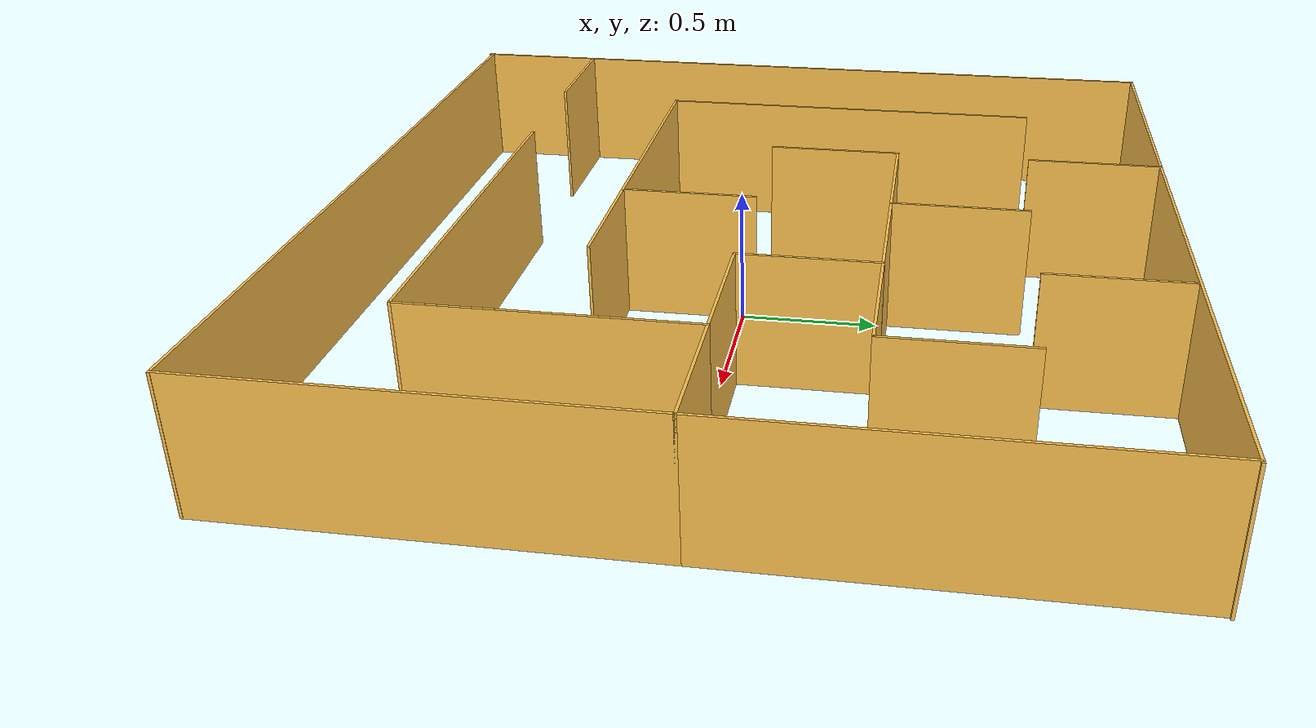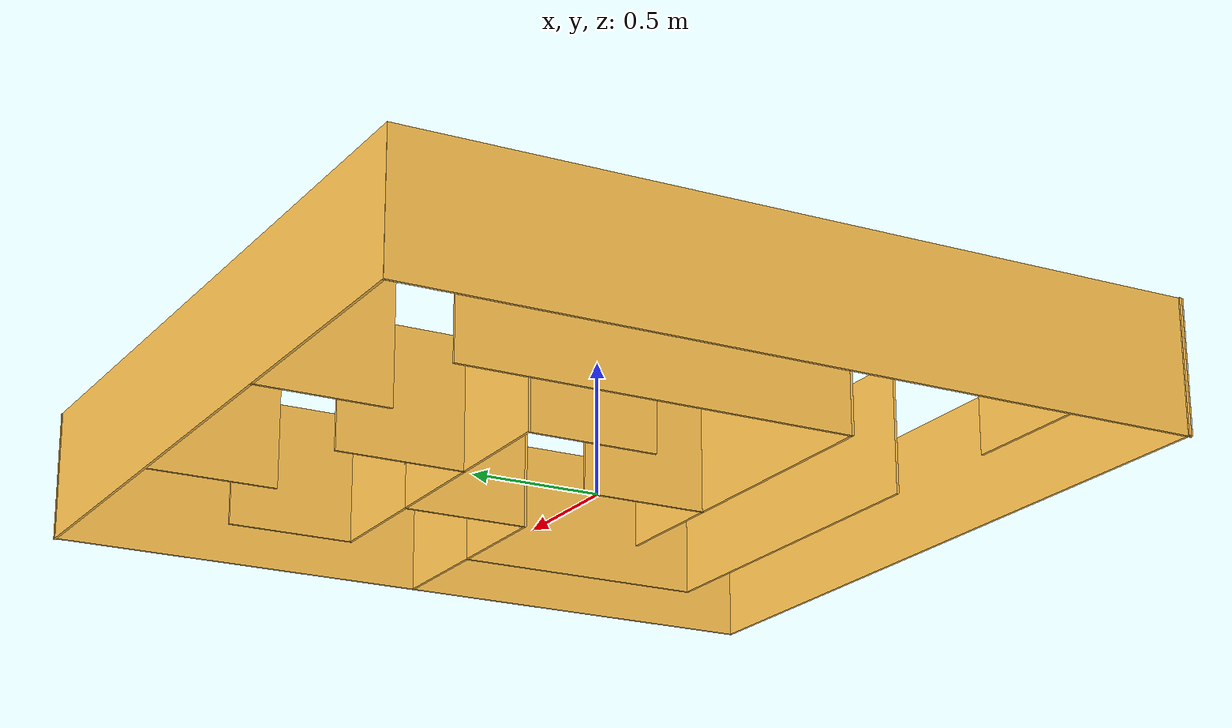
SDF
<?xml version='1.0'?>
<sdf version='1.7'>
  <model name='maze_world'>
    <pose>-0.030549 0.041679 0 0 -0 0</pose>
    <link name='Wall_0'>
      <collision name='Wall_0_Collision'>
        <geometry>
          <box>
            <size>0.5 0.01 0.5</size>
          </box>
        </geometry>
        <pose>0 0 0.25 0 -0 0</pose>
      </collision>
      <visual name='Wall_0_Visual'>
        <pose>0 0 0.25 0 -0 0</pose>
        <geometry>
          <box>
            <size>0.5 0.01 0.5</size>
          </box>
        </geometry>
        <material>
          <script>
            <uri>file://media/materials/scripts/gazebo.material</uri>
            <name>Gazebo/Grey</name>
          </script>
          <ambient>1 0.764706 0.305882 1</ambient>
        </material>
        <meta>
          <layer>0</layer>
        </meta>
      </visual>
      <pose>1.24555 0.005321 0 0 -0 3.14159</pose>
    </link>
    <link name='Wall_10'>
      <collision name='Wall_10_Collision'>
        <geometry>
          <box>
            <size>0.5 0.01 0.5</size>
          </box>
        </geometry>
        <pose>0 0 0.25 0 -0 0</pose>
      </collision>
      <visual name='Wall_10_Visual'>
        <pose>0 0 0.25 0 -0 0</pose>
        <geometry>
          <box>
            <size>0.5 0.01 0.5</size>
          </box>
        </geometry>
        <material>
          <script>
            <uri>file://media/materials/scripts/gazebo.material</uri>
            <name>Gazebo/Grey</name>
          </script>
          <ambient>1 0.764706 0.305882 1</ambient>
        </material>
        <meta>
          <layer>0</layer>
        </meta>
      </visual>
      <pose>0.755549 0.005321 0 0 -0 3.14159</pose>
    </link>
    <link name='Wall_12'>
      <collision name='Wall_12_Collision'>
        <geometry>
          <box>
            <size>0.5 0.01 0.5</size>
          </box>
        </geometry>
        <pose>0 0 0.25 0 -0 0</pose>
      </collision>
      <visual name='Wall_12_Visual'>
        <pose>0 0 0.25 0 -0 0</pose>
        <geometry>
          <box>
            <size>0.5 0.01 0.5</size>
          </box>
        </geometry>
        <material>
          <script>
            <uri>file://media/materials/scripts/gazebo.material</uri>
            <name>Gazebo/Grey</name>
          </script>
          <ambient>1 0.764706 0.305882 1</ambient>
        </material>
        <meta>
          <layer>0</layer>
        </meta>
      </visual>
      <pose>0.510549 0.250321 0 0 -0 1.5708</pose>
    </link>
    <link name='Wall_14'>
      <collision name='Wall_14_Collision'>
        <geometry>
          <box>
            <size>0.5 0.01 0.5</size>
          </box>
        </geometry>
        <pose>0 0 0.25 0 -0 0</pose>
      </collision>
      <visual name='Wall_14_Visual'>
        <pose>0 0 0.25 0 -0 0</pose>
        <geometry>
          <box>
            <size>0.5 0.01 0.5</size>
          </box>
        </geometry>
        <material>
          <script>
            <uri>file://media/materials/scripts/gazebo.material</uri>
            <name>Gazebo/Grey</name>
          </script>
          <ambient>1 0.764706 0.305882 1</ambient>
        </material>
        <meta>
          <layer>0</layer>
        </meta>
      </visual>
      <pose>0.755549 0.495321 0 0 -0 0</pose>
    </link>
    <link name='Wall_16'>
      <collision name='Wall_16_Collision'>
        <geometry>
          <box>
            <size>0.5 0.01 0.5</size>
          </box>
        </geometry>
        <pose>0 0 0.25 0 -0 0</pose>
      </collision>
      <visual name='Wall_16_Visual'>
        <pose>0 0 0.25 0 -0 0</pose>
        <geometry>
          <box>
            <size>0.5 0.01 0.5</size>
          </box>
        </geometry>
        <material>
          <script>
            <uri>file://media/materials/scripts/gazebo.material</uri>
            <name>Gazebo/Grey</name>
          </script>
          <ambient>1 0.764706 0.305882 1</ambient>
        </material>
        <meta>
          <layer>0</layer>
        </meta>
      </visual>
      <pose>0.265549 0.495321 0 0 -0 3.14159</pose>
    </link>
    <link name='Wall_18'>
      <collision name='Wall_18_Collision'>
        <geometry>
          <box>
            <size>0.5 0.01 0.5</size>
          </box>
        </geometry>
        <pose>0 0 0.25 0 -0 0</pose>
      </collision>
      <visual name='Wall_18_Visual'>
        <pose>0 0 0.25 0 -0 0</pose>
        <geometry>
          <box>
            <size>0.5 0.01 0.5</size>
          </box>
        </geometry>
        <material>
          <script>
            <uri>file://media/materials/scripts/gazebo.material</uri>
            <name>Gazebo/Grey</name>
          </script>
          <ambient>1 0.764706 0.305882 1</ambient>
        </material>
        <meta>
          <layer>0</layer>
        </meta>
      </visual>
      <pose>-0.224451 0.495321 0 0 -0 3.14159</pose>
    </link>
    <link name='Wall_2'>
      <collision name='Wall_2_Collision'>
        <geometry>
          <box>
            <size>1 0.01 0.5</size>
          </box>
        </geometry>
        <pose>0 0 0.25 0 -0 0</pose>
      </collision>
      <visual name='Wall_2_Visual'>
        <pose>0 0 0.25 0 -0 0</pose>
        <geometry>
          <box>
            <size>1 0.01 0.5</size>
          </box>
        </geometry>
        <material>
          <script>
            <uri>file://media/materials/scripts/gazebo.material</uri>
            <name>Gazebo/Grey</name>
          </script>
          <ambient>1 0.764706 0.305882 1</ambient>
        </material>
        <meta>
          <layer>0</layer>
        </meta>
      </visual>
      <pose>1.00055 -0.489679 0 0 -0 -1.5708</pose>
    </link>
    <link name='Wall_20'>
      <collision name='Wall_20_Collision'>
        <geometry>
          <box>
            <size>0.5 0.01 0.5</size>
          </box>
        </geometry>
        <pose>0 0 0.25 0 -0 0</pose>
      </collision>
      <visual name='Wall_20_Visual'>
        <pose>0 0 0.25 0 -0 0</pose>
        <geometry>
          <box>
            <size>0.5 0.01 0.5</size>
          </box>
        </geometry>
        <material>
          <script>
            <uri>file://media/materials/scripts/gazebo.material</uri>
            <name>Gazebo/Grey</name>
          </script>
          <ambient>1 0.764706 0.305882 1</ambient>
        </material>
        <meta>
          <layer>0</layer>
        </meta>
      </visual>
      <pose>-0.469451 0.250321 0 0 -0 -1.5708</pose>
    </link>
    <link name='Wall_22'>
      <collision name='Wall_22_Collision'>
        <geometry>
          <box>
            <size>0.5 0.01 0.5</size>
          </box>
        </geometry>
        <pose>0 0 0.25 0 -0 0</pose>
      </collision>
      <visual name='Wall_22_Visual'>
        <pose>0 0 0.25 0 -0 0</pose>
        <geometry>
          <box>
            <size>0.5 0.01 0.5</size>
          </box>
        </geometry>
        <material>
          <script>
            <uri>file://media/materials/scripts/gazebo.material</uri>
            <name>Gazebo/Grey</name>
          </script>
          <ambient>1 0.764706 0.305882 1</ambient>
        </material>
        <meta>
          <layer>0</layer>
        </meta>
      </visual>
      <pose>0.020549 0.740321 0 0 -0 1.5708</pose>
    </link>
    <link name='Wall_24'>
      <collision name='Wall_24_Collision'>
        <geometry>
          <box>
            <size>0.5 0.01 0.5</size>
          </box>
        </geometry>
        <pose>0 0 0.25 0 -0 0</pose>
      </collision>
      <visual name='Wall_24_Visual'>
        <pose>0 0 0.25 0 -0 0</pose>
        <geometry>
          <box>
            <size>0.5 0.01 0.5</size>
          </box>
        </geometry>
        <material>
          <script>
            <uri>file://media/materials/scripts/gazebo.material</uri>
            <name>Gazebo/Grey</name>
          </script>
          <ambient>1 0.764706 0.305882 1</ambient>
        </material>
        <meta>
          <layer>0</layer>
        </meta>
      </visual>
      <pose>1.00055 0.740321 0 0 -0 1.5708</pose>
    </link>
    <link name='Wall_26'>
      <collision name='Wall_26_Collision'>
        <geometry>
          <box>
            <size>0.5 0.01 0.5</size>
          </box>
        </geometry>
        <pose>0 0 0.25 0 -0 0</pose>
      </collision>
      <visual name='Wall_26_Visual'>
        <pose>0 0 0.25 0 -0 0</pose>
        <geometry>
          <box>
            <size>0.5 0.01 0.5</size>
          </box>
        </geometry>
        <material>
          <script>
            <uri>file://media/materials/scripts/gazebo.material</uri>
            <name>Gazebo/Grey</name>
          </script>
          <ambient>1 0.764706 0.305882 1</ambient>
        </material>
        <meta>
          <layer>0</layer>
        </meta>
      </visual>
      <pose>0.515549 1.24865 0 0 -0 -1.5708</pose>
    </link>
    <link name='Wall_28'>
      <collision name='Wall_28_Collision'>
        <geometry>
          <box>
            <size>0.5 0.01 0.5</size>
          </box>
        </geometry>
        <pose>0 0 0.25 0 -0 0</pose>
      </collision>
      <visual name='Wall_28_Visual'>
        <pose>0 0 0.25 0 -0 0</pose>
        <geometry>
          <box>
            <size>0.5 0.01 0.5</size>
          </box>
        </geometry>
        <material>
          <script>
            <uri>file://media/materials/scripts/gazebo.material</uri>
            <name>Gazebo/Grey</name>
          </script>
          <ambient>1 0.764706 0.305882 1</ambient>
        </material>
        <meta>
          <layer>0</layer>
        </meta>
      </visual>
      <pose>-0.471451 1.2488 0 0 -0 -1.5708</pose>
    </link>
    <link name='Wall_36'>
      <collision name='Wall_36_Collision'>
        <geometry>
          <box>
            <size>1.5 0.01 0.5</size>
          </box>
        </geometry>
        <pose>0 0 0.25 0 -0 0</pose>
      </collision>
      <visual name='Wall_36_Visual'>
        <pose>0 0 0.25 0 -0 0</pose>
        <geometry>
          <box>
            <size>1.5 0.01 0.5</size>
          </box>
        </geometry>
        <material>
          <script>
            <uri>file://media/materials/scripts/gazebo.material</uri>
            <name>Gazebo/Grey</name>
          </script>
          <ambient>1 0.764706 0.305882 1</ambient>
        </material>
        <meta>
          <layer>0</layer>
        </meta>
      </visual>
      <pose>-0.955451 0.261321 0 0 -0 1.5708</pose>
    </link>
    <link name='Wall_38'>
      <collision name='Wall_38_Collision'>
        <geometry>
          <box>
            <size>1 0.01 0.5</size>
          </box>
        </geometry>
        <pose>0 0 0.25 0 -0 0</pose>
      </collision>
      <visual name='Wall_38_Visual'>
        <pose>0 0 0.25 0 -0 0</pose>
        <geometry>
          <box>
            <size>1 0.01 0.5</size>
          </box>
        </geometry>
        <material>
          <script>
            <uri>file://media/materials/scripts/gazebo.material</uri>
            <name>Gazebo/Grey</name>
          </script>
          <ambient>1 0.764706 0.305882 1</ambient>
        </material>
        <meta>
          <layer>0</layer>
        </meta>
      </visual>
      <pose>-0.460451 -0.483679 0 0 -0 0</pose>
    </link>
    <link name='Wall_40'>
      <collision name='Wall_40_Collision'>
        <geometry>
          <box>
            <size>0.5 0.01 0.5</size>
          </box>
        </geometry>
        <pose>0 0 0.25 0 -0 0</pose>
      </collision>
      <visual name='Wall_40_Visual'>
        <pose>0 0 0.25 0 -0 0</pose>
        <geometry>
          <box>
            <size>0.5 0.01 0.5</size>
          </box>
        </geometry>
        <material>
          <script>
            <uri>file://media/materials/scripts/gazebo.material</uri>
            <name>Gazebo/Grey</name>
          </script>
          <ambient>1 0.764706 0.305882 1</ambient>
        </material>
        <meta>
          <layer>0</layer>
        </meta>
      </visual>
      <pose>0.279549 -0.483679 0 0 -0 0</pose>
    </link>
    <link name='Wall_42'>
      <collision name='Wall_42_Collision'>
        <geometry>
          <box>
            <size>0.5 0.01 0.5</size>
          </box>
        </geometry>
        <pose>0 0 0.25 0 -0 0</pose>
      </collision>
      <visual name='Wall_42_Visual'>
        <pose>0 0 0.25 0 -0 0</pose>
        <geometry>
          <box>
            <size>0.5 0.01 0.5</size>
          </box>
        </geometry>
        <material>
          <script>
            <uri>file://media/materials/scripts/gazebo.material</uri>
            <name>Gazebo/Grey</name>
          </script>
          <ambient>1 0.764706 0.305882 1</ambient>
        </material>
        <meta>
          <layer>0</layer>
        </meta>
      </visual>
      <pose>0.034549 -0.238679 0 0 -0 1.5708</pose>
    </link>
    <link name='Wall_44'>
      <collision name='Wall_44_Collision'>
        <geometry>
          <box>
            <size>1.5 0.01 0.5</size>
          </box>
        </geometry>
        <pose>0 0 0.25 0 -0 0</pose>
      </collision>
      <visual name='Wall_44_Visual'>
        <pose>0 0 0.25 0 -0 0</pose>
        <geometry>
          <box>
            <size>1.5 0.01 0.5</size>
          </box>
        </geometry>
        <material>
          <script>
            <uri>file://media/materials/scripts/gazebo.material</uri>
            <name>Gazebo/Grey</name>
          </script>
          <ambient>1 0.764706 0.305882 1</ambient>
        </material>
        <meta>
          <layer>0</layer>
        </meta>
      </visual>
      <pose>1.49055 -0.739679 0 0 -0 -1.5708</pose>
    </link>
    <link name='Wall_46'>
      <collision name='Wall_46_Collision'>
        <geometry>
          <box>
            <size>1.5 0.01 0.5</size>
          </box>
        </geometry>
        <pose>0 0 0.25 0 -0 0</pose>
      </collision>
      <visual name='Wall_46_Visual'>
        <pose>0 0 0.25 0 -0 0</pose>
        <geometry>
          <box>
            <size>1.5 0.01 0.5</size>
          </box>
        </geometry>
        <material>
          <script>
            <uri>file://media/materials/scripts/gazebo.material</uri>
            <name>Gazebo/Grey</name>
          </script>
          <ambient>1 0.764706 0.305882 1</ambient>
        </material>
        <meta>
          <layer>0</layer>
        </meta>
      </visual>
      <pose>1.49055 0.750321 0 0 -0 1.5708</pose>
    </link>
    <link name='Wall_51'>
      <collision name='Wall_51_Collision'>
        <geometry>
          <box>
            <size>3 0.01 0.5</size>
          </box>
        </geometry>
        <pose>0 0 0.25 0 -0 0</pose>
      </collision>
      <visual name='Wall_51_Visual'>
        <pose>0 0 0.25 0 -0 0</pose>
        <geometry>
          <box>
            <size>3 0.01 0.5</size>
          </box>
        </geometry>
        <material>
          <script>
            <uri>file://media/materials/scripts/gazebo.material</uri>
            <name>Gazebo/Grey</name>
          </script>
          <ambient>1 0.764706 0.305882 1</ambient>
        </material>
        <meta>
          <layer>0</layer>
        </meta>
      </visual>
      <pose>0.003593 1.49474 0 0 -0 0</pose>
    </link>
    <link name='Wall_53'>
      <collision name='Wall_53_Collision'>
        <geometry>
          <box>
            <size>3 0.01 0.5</size>
          </box>
        </geometry>
        <pose>0 0 0.25 0 -0 0</pose>
      </collision>
      <visual name='Wall_53_Visual'>
        <pose>0 0 0.25 0 -0 0</pose>
        <geometry>
          <box>
            <size>3 0.01 0.5</size>
          </box>
        </geometry>
        <material>
          <script>
            <uri>file://media/materials/scripts/gazebo.material</uri>
            <name>Gazebo/Grey</name>
          </script>
          <ambient>1 0.764706 0.305882 1</ambient>
        </material>
        <meta>
          <layer>0</layer>
        </meta>
      </visual>
      <pose>-1.4928 -0.000321 0 0 -0 1.5708</pose>
    </link>
    <link name='Wall_57'>
      <collision name='Wall_57_Collision'>
        <geometry>
          <box>
            <size>3 0.01 0.5</size>
          </box>
        </geometry>
        <pose>0 0 0.25 0 -0 0</pose>
      </collision>
      <visual name='Wall_57_Visual'>
        <pose>0 0 0.25 0 -0 0</pose>
        <geometry>
          <box>
            <size>3 0.01 0.5</size>
          </box>
        </geometry>
        <material>
          <script>
            <uri>file://media/materials/scripts/gazebo.material</uri>
            <name>Gazebo/Grey</name>
          </script>
          <ambient>1 0.764706 0.305882 1</ambient>
        </material>
        <meta>
          <layer>0</layer>
        </meta>
      </visual>
      <pose>-0.003593 -1.4846 0 0 -0 0</pose>
    </link>
    <link name='Wall_59'>
      <collision name='Wall_59_Collision'>
        <geometry>
          <box>
            <size>0.5 0.01 0.5</size>
          </box>
        </geometry>
        <pose>0 0 0.25 0 -0 0</pose>
      </collision>
      <visual name='Wall_59_Visual'>
        <pose>0 0 0.25 0 -0 0</pose>
        <geometry>
          <box>
            <size>0.5 0.01 0.5</size>
          </box>
        </geometry>
        <material>
          <script>
            <uri>file://media/materials/scripts/gazebo.material</uri>
            <name>Gazebo/Grey</name>
          </script>
          <ambient>1 0.764706 0.305882 1</ambient>
        </material>
        <meta>
          <layer>0</layer>
        </meta>
      </visual>
      <pose>-1.24682 -0.991679 0 0 -0 0</pose>
    </link>
    <link name='Wall_8'>
      <collision name='Wall_8_Collision'>
        <geometry>
          <box>
            <size>1.5 0.01 0.5</size>
          </box>
        </geometry>
        <pose>0 0 0.25 0 -0 0</pose>
      </collision>
      <visual name='Wall_8_Visual'>
        <pose>0 0 0.25 0 -0 0</pose>
        <geometry>
          <box>
            <size>1.5 0.01 0.5</size>
          </box>
        </geometry>
        <material>
          <script>
            <uri>file://media/materials/scripts/gazebo.material</uri>
            <name>Gazebo/Grey</name>
          </script>
          <ambient>1 0.764706 0.305882 1</ambient>
        </material>
        <meta>
          <layer>0</layer>
        </meta>
      </visual>
      <pose>0.255549 -0.984679 0 0 -0 3.14159</pose>
    </link>
    <static>1</static>
  </model>
</sdf>
